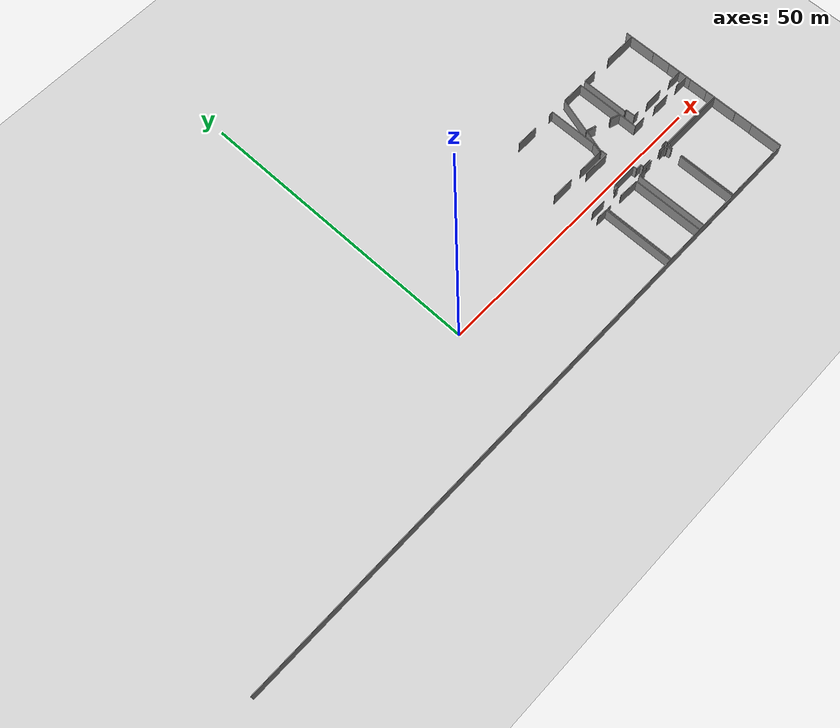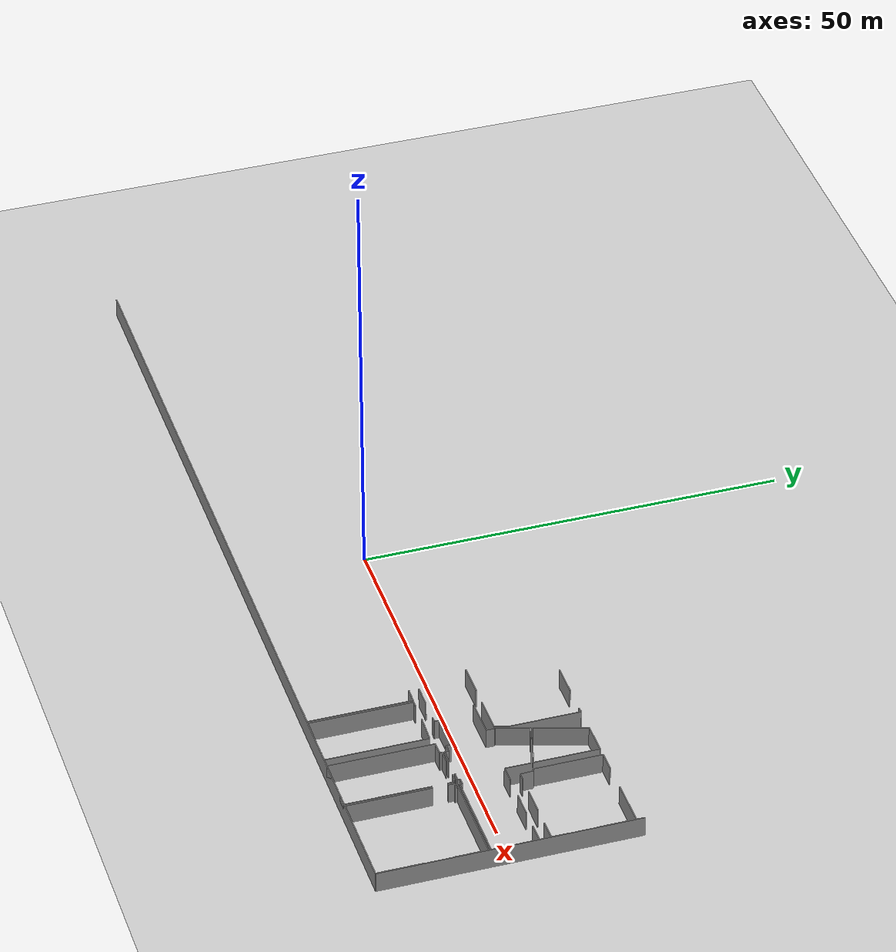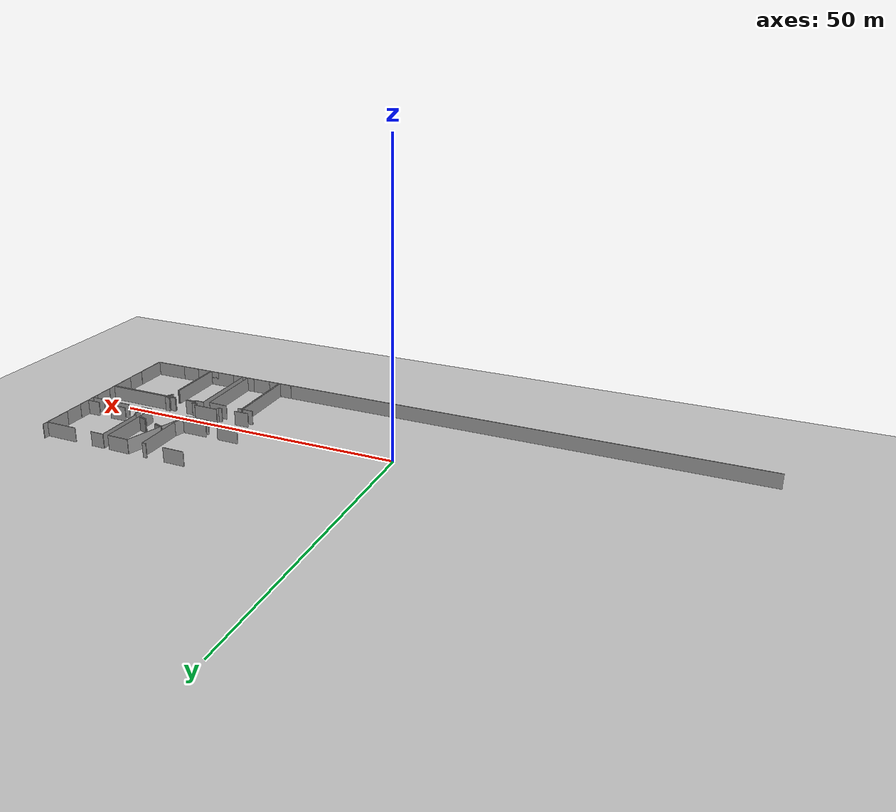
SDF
<sdf version="1.6">
 <world name="default">
  <model name="ground_plane">
   <static>1</static>
   <link name="link">
    <collision name="collision">
     <geometry><plane><normal>0 0 1</normal><size>100 100</size></plane></geometry>
     <surface><friction><ode><mu>100</mu><mu2>50</mu2></ode></friction></surface>
    </collision>
    <visual name="visual">
     <cast_shadows>0</cast_shadows>
     <geometry><plane><normal>0 0 1</normal><size>100 100</size></plane></geometry>
     <material>
      <script><uri>file://media/materials/scripts/gazebo.material</uri><name>Gazebo/Grey</name></script>
     </material>
    </visual>
   </link>
  </model>
  <model name="50056459">
   <static>1</static>
   <link name="Wall_155">
    <collision name="Wall_155_Collision">
     <geometry><box><size>11.2285397274 0.1 2.5</size></box></geometry>
     <pose>5.61426986372 0 1.25 0 0 0</pose>
    </collision>
    <visual name="Wall_155_Visual">
     <pose>5.61426986372 0 1.25 0 0 0</pose>
     <geometry><box><size>11.2285397274 0.1 2.5</size></box></geometry>
     <material>
      <script><uri>file://media/materials/scripts/gazebo.material</uri><name>Gazebo/Grey</name></script>
      <ambient>1 1 1 1</ambient>
     </material>
    </visual>
    <pose>110.200953696 -17.4158740376 0 0 0 3.14159265359</pose>
   </link>
   <link name="Wall_156">
    <collision name="Wall_156_Collision">
     <geometry><box><size>0.298643990277 0.1 2.5</size></box></geometry>
     <pose>0.149321995138 0 1.25 0 0 0</pose>
    </collision>
    <visual name="Wall_156_Visual">
     <pose>0.149321995138 0 1.25 0 0 0</pose>
     <geometry><box><size>0.298643990277 0.1 2.5</size></box></geometry>
     <material>
      <script><uri>file://media/materials/scripts/gazebo.material</uri><name>Gazebo/Grey</name></script>
      <ambient>1 1 1 1</ambient>
     </material>
    </visual>
    <pose>98.9724139683 -17.4158740376 0 0 0 1.57079632679</pose>
   </link>
   <link name="Wall_157">
    <collision name="Wall_157_Collision">
     <geometry><box><size>0.824108345262 0.1 2.5</size></box></geometry>
     <pose>0.412054172631 0 1.25 0 0 0</pose>
    </collision>
    <visual name="Wall_157_Visual">
     <pose>0.412054172631 0 1.25 0 0 0</pose>
     <geometry><box><size>0.824108345262 0.1 2.5</size></box></geometry>
     <material>
      <script><uri>file://media/materials/scripts/gazebo.material</uri><name>Gazebo/Grey</name></script>
      <ambient>1 1 1 1</ambient>
     </material>
    </visual>
    <pose>98.9724139683 -17.1172300473 0 0 0 3.14159265359</pose>
   </link>
   <link name="Wall_158">
    <collision name="Wall_158_Collision">
     <geometry><box><size>0.278316549078 0.1 2.5</size></box></geometry>
     <pose>0.139158274539 0 1.25 0 0 0</pose>
    </collision>
    <visual name="Wall_158_Visual">
     <pose>0.139158274539 0 1.25 0 0 0</pose>
     <geometry><box><size>0.278316549078 0.1 2.5</size></box></geometry>
     <material>
      <script><uri>file://media/materials/scripts/gazebo.material</uri><name>Gazebo/Grey</name></script>
      <ambient>1 1 1 1</ambient>
     </material>
    </visual>
    <pose>98.1483056231 -17.1172300473 0 0 0 -1.57079632679</pose>
   </link>
   <link name="Wall_159">
    <collision name="Wall_159_Collision">
     <geometry><box><size>1.04703261707 0.1 2.5</size></box></geometry>
     <pose>0.523516308537 0 1.25 0 0 0</pose>
    </collision>
    <visual name="Wall_159_Visual">
     <pose>0.523516308537 0 1.25 0 0 0</pose>
     <geometry><box><size>1.04703261707 0.1 2.5</size></box></geometry>
     <material>
      <script><uri>file://media/materials/scripts/gazebo.material</uri><name>Gazebo/Grey</name></script>
      <ambient>1 1 1 1</ambient>
     </material>
    </visual>
    <pose>98.1483056231 -17.3955465964 0 0 0 3.14159265359</pose>
   </link>
   <link name="Wall_160">
    <collision name="Wall_160_Collision">
     <geometry><box><size>1.61501520323 0.1 2.5</size></box></geometry>
     <pose>0.807507601616 0 1.25 0 0 0</pose>
    </collision>
    <visual name="Wall_160_Visual">
     <pose>0.807507601616 0 1.25 0 0 0</pose>
     <geometry><box><size>1.61501520323 0.1 2.5</size></box></geometry>
     <material>
      <script><uri>file://media/materials/scripts/gazebo.material</uri><name>Gazebo/Grey</name></script>
      <ambient>1 1 1 1</ambient>
     </material>
    </visual>
    <pose>94.8847349386 -17.3955465964 0 0 0 3.14159265359</pose>
   </link>
   <link name="Wall_161">
    <collision name="Wall_161_Collision">
     <geometry><box><size>0.467700542912 0.1 2.5</size></box></geometry>
     <pose>0.233850271456 0 1.25 0 0 0</pose>
    </collision>
    <visual name="Wall_161_Visual">
     <pose>0.233850271456 0 1.25 0 0 0</pose>
     <geometry><box><size>0.467700542912 0.1 2.5</size></box></geometry>
     <material>
      <script><uri>file://media/materials/scripts/gazebo.material</uri><name>Gazebo/Grey</name></script>
      <ambient>1 1 1 1</ambient>
     </material>
    </visual>
    <pose>93.2697197354 -17.3955465964 0 0 0 1.57079632679</pose>
   </link>
   <link name="Wall_162">
    <collision name="Wall_162_Collision">
     <geometry><box><size>0.980121456461 0.1 2.5</size></box></geometry>
     <pose>0.490060728231 0 1.25 0 0 0</pose>
    </collision>
    <visual name="Wall_162_Visual">
     <pose>0.490060728231 0 1.25 0 0 0</pose>
     <geometry><box><size>0.980121456461 0.1 2.5</size></box></geometry>
     <material>
      <script><uri>file://media/materials/scripts/gazebo.material</uri><name>Gazebo/Grey</name></script>
      <ambient>1 1 1 1</ambient>
     </material>
    </visual>
    <pose>93.2697197354 -16.9278460535 0 0 0 3.14159265359</pose>
   </link>
   <link name="Wall_163">
    <collision name="Wall_163_Collision">
     <geometry><box><size>0.612533561452 0.1 2.5</size></box></geometry>
     <pose>0.306266780726 0 1.25 0 0 0</pose>
    </collision>
    <visual name="Wall_163_Visual">
     <pose>0.306266780726 0 1.25 0 0 0</pose>
     <geometry><box><size>0.612533561452 0.1 2.5</size></box></geometry>
     <material>
      <script><uri>file://media/materials/scripts/gazebo.material</uri><name>Gazebo/Grey</name></script>
      <ambient>1 1 1 1</ambient>
     </material>
    </visual>
    <pose>92.2895982789 -16.9278460535 0 0 0 1.57079632679</pose>
   </link>
   <link name="Wall_164">
    <collision name="Wall_164_Collision">
     <geometry><box><size>4.31043390617 0.1 2.5</size></box></geometry>
     <pose>2.15521695309 0 1.25 0 0 0</pose>
    </collision>
    <visual name="Wall_164_Visual">
     <pose>2.15521695309 0 1.25 0 0 0</pose>
     <geometry><box><size>4.31043390617 0.1 2.5</size></box></geometry>
     <material>
      <script><uri>file://media/materials/scripts/gazebo.material</uri><name>Gazebo/Grey</name></script>
      <ambient>1 1 1 1</ambient>
     </material>
    </visual>
    <pose>92.2895982789 -16.3153124921 0 0 0 3.14159265359</pose>
   </link>
   <link name="Wall_165">
    <collision name="Wall_165_Collision">
     <geometry><box><size>0.601353468793 0.1 2.5</size></box></geometry>
     <pose>0.300676734397 0 1.25 0 0 0</pose>
    </collision>
    <visual name="Wall_165_Visual">
     <pose>0.300676734397 0 1.25 0 0 0</pose>
     <geometry><box><size>0.601353468793 0.1 2.5</size></box></geometry>
     <material>
      <script><uri>file://media/materials/scripts/gazebo.material</uri><name>Gazebo/Grey</name></script>
      <ambient>1 1 1 1</ambient>
     </material>
    </visual>
    <pose>87.9791643728 -16.3153124921 0 0 0 -1.57079632679</pose>
   </link>
   <link name="Wall_166">
    <collision name="Wall_166_Collision">
     <geometry><box><size>0.679444722065 0.1 2.5</size></box></geometry>
     <pose>0.339722361032 0 1.25 0 0 0</pose>
    </collision>
    <visual name="Wall_166_Visual">
     <pose>0.339722361032 0 1.25 0 0 0</pose>
     <geometry><box><size>0.679444722065 0.1 2.5</size></box></geometry>
     <material>
      <script><uri>file://media/materials/scripts/gazebo.material</uri><name>Gazebo/Grey</name></script>
      <ambient>1 1 1 1</ambient>
     </material>
    </visual>
    <pose>87.9791643728 -16.9166659609 0 0 0 3.14159265359</pose>
   </link>
   <link name="Wall_167">
    <collision name="Wall_167_Collision">
     <geometry><box><size>2.58514233444 0.1 2.5</size></box></geometry>
     <pose>1.29257116722 0 1.25 0 0 0</pose>
    </collision>
    <visual name="Wall_167_Visual">
     <pose>1.29257116722 0 1.25 0 0 0</pose>
     <geometry><box><size>2.58514233444 0.1 2.5</size></box></geometry>
     <material>
      <script><uri>file://media/materials/scripts/gazebo.material</uri><name>Gazebo/Grey</name></script>
      <ambient>1 1 1 1</ambient>
     </material>
    </visual>
    <pose>84.7674286634 -16.9166659609 0 0 0 3.14159265359</pose>
   </link>
   <link name="Wall_176">
    <collision name="Wall_176_Collision">
     <geometry><box><size>4.57147213023 0.1 2.5</size></box></geometry>
     <pose>2.28573606512 0 1.25 0 0 0</pose>
    </collision>
    <visual name="Wall_176_Visual">
     <pose>2.28573606512 0 1.25 0 0 0</pose>
     <geometry><box><size>4.57147213023 0.1 2.5</size></box></geometry>
     <material>
      <script><uri>file://media/materials/scripts/gazebo.material</uri><name>Gazebo/Grey</name></script>
      <ambient>1 1 1 1</ambient>
     </material>
    </visual>
    <pose>86.5613253492 -11.9491475179 0 0 0 0.0</pose>
   </link>
   <link name="Wall_177">
    <collision name="Wall_177_Collision">
     <geometry><box><size>0.982662386611 0.1 2.5</size></box></geometry>
     <pose>0.491331193305 0 1.25 0 0 0</pose>
    </collision>
    <visual name="Wall_177_Visual">
     <pose>0.491331193305 0 1.25 0 0 0</pose>
     <geometry><box><size>0.982662386611 0.1 2.5</size></box></geometry>
     <material>
      <script><uri>file://media/materials/scripts/gazebo.material</uri><name>Gazebo/Grey</name></script>
      <ambient>1 1 1 1</ambient>
     </material>
    </visual>
    <pose>91.1327974794 -11.9491475179 0 0 0 1.57079632679</pose>
   </link>
   <link name="Wall_178">
    <collision name="Wall_178_Collision">
     <geometry><box><size>0.10654967095 0.1 2.5</size></box></geometry>
     <pose>0.0532748354748 0 1.25 0 0 0</pose>
    </collision>
    <visual name="Wall_178_Visual">
     <pose>0.0532748354748 0 1.25 0 0 0</pose>
     <geometry><box><size>0.10654967095 0.1 2.5</size></box></geometry>
     <material>
      <script><uri>file://media/materials/scripts/gazebo.material</uri><name>Gazebo/Grey</name></script>
      <ambient>1 1 1 1</ambient>
     </material>
    </visual>
    <pose>91.1327974794 -10.9664851313 0 0 0 3.14159265359</pose>
   </link>
   <link name="Wall_179">
    <collision name="Wall_179_Collision">
     <geometry><box><size>3.97869166055 0.1 2.5</size></box></geometry>
     <pose>1.98934583028 0 1.25 0 0 0</pose>
    </collision>
    <visual name="Wall_179_Visual">
     <pose>1.98934583028 0 1.25 0 0 0</pose>
     <geometry><box><size>3.97869166055 0.1 2.5</size></box></geometry>
     <material>
      <script><uri>file://media/materials/scripts/gazebo.material</uri><name>Gazebo/Grey</name></script>
      <ambient>1 1 1 1</ambient>
     </material>
    </visual>
    <pose>91.0262478084 -10.9664851313 0 0 0 1.26727649594</pose>
   </link>
   <link name="Wall_180">
    <collision name="Wall_180_Collision">
     <geometry><box><size>1.64075109702 0.1 2.5</size></box></geometry>
     <pose>0.820375548509 0 1.25 0 0 0</pose>
    </collision>
    <visual name="Wall_180_Visual">
     <pose>0.820375548509 0 1.25 0 0 0</pose>
     <geometry><box><size>1.64075109702 0.1 2.5</size></box></geometry>
     <material>
      <script><uri>file://media/materials/scripts/gazebo.material</uri><name>Gazebo/Grey</name></script>
      <ambient>1 1 1 1</ambient>
     </material>
    </visual>
    <pose>92.2154031186 -7.1696579061 0 0 0 -0.285078447006</pose>
   </link>
   <link name="Wall_181">
    <collision name="Wall_181_Collision">
     <geometry><box><size>1.64778551166 0.1 2.5</size></box></geometry>
     <pose>0.82389275583 0 1.25 0 0 0</pose>
    </collision>
    <visual name="Wall_181_Visual">
     <pose>0.82389275583 0 1.25 0 0 0</pose>
     <geometry><box><size>1.64778551166 0.1 2.5</size></box></geometry>
     <material>
      <script><uri>file://media/materials/scripts/gazebo.material</uri><name>Gazebo/Grey</name></script>
      <ambient>1 1 1 1</ambient>
     </material>
    </visual>
    <pose>96.3337427054 -8.4291122837 0 0 0 -0.310599808801</pose>
   </link>
   <link name="Wall_182">
    <collision name="Wall_182_Collision">
     <geometry><box><size>3.05368985407 0.1 2.5</size></box></geometry>
     <pose>1.52684492703 0 1.25 0 0 0</pose>
    </collision>
    <visual name="Wall_182_Visual">
     <pose>1.52684492703 0 1.25 0 0 0</pose>
     <geometry><box><size>3.05368985407 0.1 2.5</size></box></geometry>
     <material>
      <script><uri>file://media/materials/scripts/gazebo.material</uri><name>Gazebo/Grey</name></script>
      <ambient>1 1 1 1</ambient>
     </material>
    </visual>
    <pose>97.9026823753 -8.9327246394 0 0 0 -1.57079632679</pose>
   </link>
   <link name="Wall_183">
    <collision name="Wall_183_Collision">
     <geometry><box><size>2.01648216691 0.1 2.5</size></box></geometry>
     <pose>1.00824108345 0 1.25 0 0 0</pose>
    </collision>
    <visual name="Wall_183_Visual">
     <pose>1.00824108345 0 1.25 0 0 0</pose>
     <geometry><box><size>2.01648216691 0.1 2.5</size></box></geometry>
     <material>
      <script><uri>file://media/materials/scripts/gazebo.material</uri><name>Gazebo/Grey</name></script>
      <ambient>1 1 1 1</ambient>
     </material>
    </visual>
    <pose>97.9026823753 -11.9864144935 0 0 0 0.0</pose>
   </link>
   <link name="Wall_184">
    <collision name="Wall_184_Collision">
     <geometry><box><size>2.99033599566 0.1 2.5</size></box></geometry>
     <pose>1.49516799783 0 1.25 0 0 0</pose>
    </collision>
    <visual name="Wall_184_Visual">
     <pose>1.49516799783 0 1.25 0 0 0</pose>
     <geometry><box><size>2.99033599566 0.1 2.5</size></box></geometry>
     <material>
      <script><uri>file://media/materials/scripts/gazebo.material</uri><name>Gazebo/Grey</name></script>
      <ambient>1 1 1 1</ambient>
     </material>
    </visual>
    <pose>102.578840828 -11.9864144935 0 0 0 0.0</pose>
   </link>
   <link name="Wall_185">
    <collision name="Wall_185_Collision">
     <geometry><box><size>2.31258522703 0.1 2.5</size></box></geometry>
     <pose>1.15629261352 0 1.25 0 0 0</pose>
    </collision>
    <visual name="Wall_185_Visual">
     <pose>1.15629261352 0 1.25 0 0 0</pose>
     <geometry><box><size>2.31258522703 0.1 2.5</size></box></geometry>
     <material>
      <script><uri>file://media/materials/scripts/gazebo.material</uri><name>Gazebo/Grey</name></script>
      <ambient>1 1 1 1</ambient>
     </material>
    </visual>
    <pose>107.852287261 -11.9864144935 0 0 0 0.0</pose>
   </link>
   <link name="Wall_186">
    <collision name="Wall_186_Collision">
     <geometry><box><size>0.894068622054 0.1 2.5</size></box></geometry>
     <pose>0.447034311027 0 1.25 0 0 0</pose>
    </collision>
    <visual name="Wall_186_Visual">
     <pose>0.447034311027 0 1.25 0 0 0</pose>
     <geometry><box><size>0.894068622054 0.1 2.5</size></box></geometry>
     <material>
      <script><uri>file://media/materials/scripts/gazebo.material</uri><name>Gazebo/Grey</name></script>
      <ambient>1 1 1 1</ambient>
     </material>
    </visual>
    <pose>110.164872488 -11.9864144935 0 0 0 -1.57079632679</pose>
   </link>
   <link name="Wall_187">
    <collision name="Wall_187_Collision">
     <geometry><box><size>1.37951942111 0.1 2.5</size></box></geometry>
     <pose>0.689759710554 0 1.25 0 0 0</pose>
    </collision>
    <visual name="Wall_187_Visual">
     <pose>0.689759710554 0 1.25 0 0 0</pose>
     <geometry><box><size>1.37951942111 0.1 2.5</size></box></geometry>
     <material>
      <script><uri>file://media/materials/scripts/gazebo.material</uri><name>Gazebo/Grey</name></script>
      <ambient>1 1 1 1</ambient>
     </material>
    </visual>
    <pose>110.164872488 -16.0368265476 0 0 0 -1.54463843255</pose>
   </link>
   <link name="Wall_236">
    <collision name="Wall_236_Collision">
     <geometry><box><size>4.4212184607 0.1 2.5</size></box></geometry>
     <pose>2.21060923035 0 1.25 0 0 0</pose>
    </collision>
    <visual name="Wall_236_Visual">
     <pose>2.21060923035 0 1.25 0 0 0</pose>
     <geometry><box><size>4.4212184607 0.1 2.5</size></box></geometry>
     <material>
      <script><uri>file://media/materials/scripts/gazebo.material</uri><name>Gazebo/Grey</name></script>
      <ambient>1 1 1 1</ambient>
     </material>
    </visual>
    <pose>90.8051868854 -10.9449719227 0 0 0 3.14159265359</pose>
   </link>
   <link name="Wall_237">
    <collision name="Wall_237_Collision">
     <geometry><box><size>3.81698527107 0.1 2.5</size></box></geometry>
     <pose>1.90849263554 0 1.25 0 0 0</pose>
    </collision>
    <visual name="Wall_237_Visual">
     <pose>1.90849263554 0 1.25 0 0 0</pose>
     <geometry><box><size>3.81698527107 0.1 2.5</size></box></geometry>
     <material>
      <script><uri>file://media/materials/scripts/gazebo.material</uri><name>Gazebo/Grey</name></script>
      <ambient>1 1 1 1</ambient>
     </material>
    </visual>
    <pose>84.241286727 -10.9449719227 0 0 0 3.14159265359</pose>
   </link>
   <link name="Wall_239">
    <collision name="Wall_239_Collision">
     <geometry><box><size>3.75786629626 0.1 2.5</size></box></geometry>
     <pose>1.87893314813 0 1.25 0 0 0</pose>
    </collision>
    <visual name="Wall_239_Visual">
     <pose>1.87893314813 0 1.25 0 0 0</pose>
     <geometry><box><size>3.75786629626 0.1 2.5</size></box></geometry>
     <material>
      <script><uri>file://media/materials/scripts/gazebo.material</uri><name>Gazebo/Grey</name></script>
      <ambient>1 1 1 1</ambient>
     </material>
    </visual>
    <pose>83.636375956 -1.0197599668 0 0 0 0.0</pose>
   </link>
   <link name="Wall_240">
    <collision name="Wall_240_Collision">
     <geometry><box><size>0.677920163975 0.1 2.5</size></box></geometry>
     <pose>0.338960081987 0 1.25 0 0 0</pose>
    </collision>
    <visual name="Wall_240_Visual">
     <pose>0.338960081987 0 1.25 0 0 0</pose>
     <geometry><box><size>0.677920163975 0.1 2.5</size></box></geometry>
     <material>
      <script><uri>file://media/materials/scripts/gazebo.material</uri><name>Gazebo/Grey</name></script>
      <ambient>1 1 1 1</ambient>
     </material>
    </visual>
    <pose>90.5903935901 -1.0197599668 0 0 0 0.0</pose>
   </link>
   <link name="Wall_241">
    <collision name="Wall_241_Collision">
     <geometry><box><size>8.25124717322 0.1 2.5</size></box></geometry>
     <pose>4.12562358661 0 1.25 0 0 0</pose>
    </collision>
    <visual name="Wall_241_Visual">
     <pose>4.12562358661 0 1.25 0 0 0</pose>
     <geometry><box><size>8.25124717322 0.1 2.5</size></box></geometry>
     <material>
      <script><uri>file://media/materials/scripts/gazebo.material</uri><name>Gazebo/Grey</name></script>
      <ambient>1 1 1 1</ambient>
     </material>
    </visual>
    <pose>91.2683137541 -1.0197599668 0 0 0 -1.57079632679</pose>
   </link>
   <link name="Wall_242">
    <collision name="Wall_242_Collision">
     <geometry><box><size>1.73684904071 0.1 2.5</size></box></geometry>
     <pose>0.868424520354 0 1.25 0 0 0</pose>
    </collision>
    <visual name="Wall_242_Visual">
     <pose>0.868424520354 0 1.25 0 0 0</pose>
     <geometry><box><size>1.73684904071 0.1 2.5</size></box></geometry>
     <material>
      <script><uri>file://media/materials/scripts/gazebo.material</uri><name>Gazebo/Grey</name></script>
      <ambient>1 1 1 1</ambient>
     </material>
    </visual>
    <pose>91.2683137541 -9.27100714001 0 0 0 -1.84070948325</pose>
   </link>
   <link name="Wall_243">
    <collision name="Wall_243_Collision">
     <geometry><box><size>7.74001202707 0.1 2.5</size></box></geometry>
     <pose>3.87000601353 0 1.25 0 0 0</pose>
    </collision>
    <visual name="Wall_243_Visual">
     <pose>3.87000601353 0 1.25 0 0 0</pose>
     <geometry><box><size>7.74001202707 0.1 2.5</size></box></geometry>
     <material>
      <script><uri>file://media/materials/scripts/gazebo.material</uri><name>Gazebo/Grey</name></script>
      <ambient>1 1 1 1</ambient>
     </material>
    </visual>
    <pose>97.9028517706 -8.75977199387 0 0 0 1.57079632679</pose>
   </link>
   <link name="Wall_244">
    <collision name="Wall_244_Collision">
     <geometry><box><size>3.77734676074 0.1 2.5</size></box></geometry>
     <pose>1.88867338037 0 1.25 0 0 0</pose>
    </collision>
    <visual name="Wall_244_Visual">
     <pose>1.88867338037 0 1.25 0 0 0</pose>
     <geometry><box><size>3.77734676074 0.1 2.5</size></box></geometry>
     <material>
      <script><uri>file://media/materials/scripts/gazebo.material</uri><name>Gazebo/Grey</name></script>
      <ambient>1 1 1 1</ambient>
     </material>
    </visual>
    <pose>97.9028517706 -1.0197599668 0 0 0 3.14159265359</pose>
   </link>
   <link name="Wall_245">
    <collision name="Wall_245_Collision">
     <geometry><box><size>6.22910630642 0.1 2.5</size></box></geometry>
     <pose>3.11455315321 0 1.25 0 0 0</pose>
    </collision>
    <visual name="Wall_245_Visual">
     <pose>3.11455315321 0 1.25 0 0 0</pose>
     <geometry><box><size>6.22910630642 0.1 2.5</size></box></geometry>
     <material>
      <script><uri>file://media/materials/scripts/gazebo.material</uri><name>Gazebo/Grey</name></script>
      <ambient>1 1 1 1</ambient>
     </material>
    </visual>
    <pose>94.1255050099 -1.0197599668 0 0 0 -1.87347192261</pose>
   </link>
   <link name="Wall_246">
    <collision name="Wall_246_Collision">
     <geometry><box><size>1.65699356654 0.1 2.5</size></box></geometry>
     <pose>0.828496783269 0 1.25 0 0 0</pose>
    </collision>
    <visual name="Wall_246_Visual">
     <pose>0.828496783269 0 1.25 0 0 0</pose>
     <geometry><box><size>1.65699356654 0.1 2.5</size></box></geometry>
     <material>
      <script><uri>file://media/materials/scripts/gazebo.material</uri><name>Gazebo/Grey</name></script>
      <ambient>1 1 1 1</ambient>
     </material>
    </visual>
    <pose>92.2687626517 -6.96570591274 0 0 0 -0.299280610082</pose>
   </link>
   <link name="Wall_247">
    <collision name="Wall_247_Collision">
     <geometry><box><size>1.59458804527 0.1 2.5</size></box></geometry>
     <pose>0.797294022633 0 1.25 0 0 0</pose>
    </collision>
    <visual name="Wall_247_Visual">
     <pose>0.797294022633 0 1.25 0 0 0</pose>
     <geometry><box><size>1.59458804527 0.1 2.5</size></box></geometry>
     <material>
      <script><uri>file://media/materials/scripts/gazebo.material</uri><name>Gazebo/Grey</name></script>
      <ambient>1 1 1 1</ambient>
     </material>
    </visual>
    <pose>96.3938780523 -8.24430196414 0 0 0 -0.329174746945</pose>
   </link>
   <link name="Wall_248">
    <collision name="Wall_248_Collision">
     <geometry><box><size>2.3273226219 0.1 2.5</size></box></geometry>
     <pose>1.16366131095 0 1.25 0 0 0</pose>
    </collision>
    <visual name="Wall_248_Visual">
     <pose>1.16366131095 0 1.25 0 0 0</pose>
     <geometry><box><size>2.3273226219 0.1 2.5</size></box></geometry>
     <material>
      <script><uri>file://media/materials/scripts/gazebo.material</uri><name>Gazebo/Grey</name></script>
      <ambient>1 1 1 1</ambient>
     </material>
    </visual>
    <pose>110.164872488 -10.6563222577 0 0 0 3.14159265359</pose>
   </link>
   <link name="Wall_249">
    <collision name="Wall_249_Collision">
     <geometry><box><size>3.14092845588 0.1 2.5</size></box></geometry>
     <pose>1.57046422794 0 1.25 0 0 0</pose>
    </collision>
    <visual name="Wall_249_Visual">
     <pose>1.57046422794 0 1.25 0 0 0</pose>
     <geometry><box><size>3.14092845588 0.1 2.5</size></box></geometry>
     <material>
      <script><uri>file://media/materials/scripts/gazebo.material</uri><name>Gazebo/Grey</name></script>
      <ambient>1 1 1 1</ambient>
     </material>
    </visual>
    <pose>105.521576732 -10.6563222577 0 0 0 3.14159265359</pose>
   </link>
   <link name="Wall_250">
    <collision name="Wall_250_Collision">
     <geometry><box><size>0.896609552203 0.1 2.5</size></box></geometry>
     <pose>0.448304776102 0 1.25 0 0 0</pose>
    </collision>
    <visual name="Wall_250_Visual">
     <pose>0.448304776102 0 1.25 0 0 0</pose>
     <geometry><box><size>0.896609552203 0.1 2.5</size></box></geometry>
     <material>
      <script><uri>file://media/materials/scripts/gazebo.material</uri><name>Gazebo/Grey</name></script>
      <ambient>1 1 1 1</ambient>
     </material>
    </visual>
    <pose>100.188164347 -10.6563222577 0 0 0 3.14159265359</pose>
   </link>
   <link name="Wall_251">
    <collision name="Wall_251_Collision">
     <geometry><box><size>1.55373520907 0.1 2.5</size></box></geometry>
     <pose>0.776867604535 0 1.25 0 0 0</pose>
    </collision>
    <visual name="Wall_251_Visual">
     <pose>0.776867604535 0 1.25 0 0 0</pose>
     <geometry><box><size>1.55373520907 0.1 2.5</size></box></geometry>
     <material>
      <script><uri>file://media/materials/scripts/gazebo.material</uri><name>Gazebo/Grey</name></script>
      <ambient>1 1 1 1</ambient>
     </material>
    </visual>
    <pose>99.2915547952 -10.6563222577 0 0 0 1.62031372382</pose>
   </link>
   <link name="Wall_252">
    <collision name="Wall_252_Collision">
     <geometry><box><size>0.311761073162 0.1 2.5</size></box></geometry>
     <pose>0.155880536581 0 1.25 0 0 0</pose>
    </collision>
    <visual name="Wall_252_Visual">
     <pose>0.155880536581 0 1.25 0 0 0</pose>
     <geometry><box><size>0.311761073162 0.1 2.5</size></box></geometry>
     <material>
      <script><uri>file://media/materials/scripts/gazebo.material</uri><name>Gazebo/Grey</name></script>
      <ambient>1 1 1 1</ambient>
     </material>
    </visual>
    <pose>99.2146493093 -9.10449151753 0 0 0 3.11985694675</pose>
   </link>
   <link name="Wall_253">
    <collision name="Wall_253_Collision">
     <geometry><box><size>8.08761127157 0.1 2.5</size></box></geometry>
     <pose>4.04380563578 0 1.25 0 0 0</pose>
    </collision>
    <visual name="Wall_253_Visual">
     <pose>4.04380563578 0 1.25 0 0 0</pose>
     <geometry><box><size>8.08761127157 0.1 2.5</size></box></geometry>
     <material>
      <script><uri>file://media/materials/scripts/gazebo.material</uri><name>Gazebo/Grey</name></script>
      <ambient>1 1 1 1</ambient>
     </material>
    </visual>
    <pose>98.9029618776 -9.0977157038 0 0 0 1.57079632679</pose>
   </link>
   <link name="Wall_254">
    <collision name="Wall_254_Collision">
     <geometry><box><size>2.37983517833 0.1 2.5</size></box></geometry>
     <pose>1.18991758917 0 1.25 0 0 0</pose>
    </collision>
    <visual name="Wall_254_Visual">
     <pose>1.18991758917 0 1.25 0 0 0</pose>
     <geometry><box><size>2.37983517833 0.1 2.5</size></box></geometry>
     <material>
      <script><uri>file://media/materials/scripts/gazebo.material</uri><name>Gazebo/Grey</name></script>
      <ambient>1 1 1 1</ambient>
     </material>
    </visual>
    <pose>98.9029618776 -1.01010443223 0 0 0 0.0</pose>
   </link>
   <link name="Wall_255">
    <collision name="Wall_255_Collision">
     <geometry><box><size>5.65899023436 0.1 2.5</size></box></geometry>
     <pose>2.82949511718 0 1.25 0 0 0</pose>
    </collision>
    <visual name="Wall_255_Visual">
     <pose>2.82949511718 0 1.25 0 0 0</pose>
     <geometry><box><size>5.65899023436 0.1 2.5</size></box></geometry>
     <material>
      <script><uri>file://media/materials/scripts/gazebo.material</uri><name>Gazebo/Grey</name></script>
      <ambient>1 1 1 1</ambient>
     </material>
    </visual>
    <pose>104.505882253 -1.01010443223 0 0 0 0.0</pose>
   </link>
   <link name="Wall_256">
    <collision name="Wall_256_Collision">
     <geometry><box><size>4.4759331566 0.1 2.5</size></box></geometry>
     <pose>2.2379665783 0 1.25 0 0 0</pose>
    </collision>
    <visual name="Wall_256_Visual">
     <pose>2.2379665783 0 1.25 0 0 0</pose>
     <geometry><box><size>4.4759331566 0.1 2.5</size></box></geometry>
     <material>
      <script><uri>file://media/materials/scripts/gazebo.material</uri><name>Gazebo/Grey</name></script>
      <ambient>1 1 1 1</ambient>
     </material>
    </visual>
    <pose>110.164872488 -1.01010443223 0 0 0 -1.57079632679</pose>
   </link>
   <link name="Wall_257">
    <collision name="Wall_257_Collision">
     <geometry><box><size>2.018006725 0.1 2.5</size></box></geometry>
     <pose>1.0090033625 0 1.25 0 0 0</pose>
    </collision>
    <visual name="Wall_257_Visual">
     <pose>1.0090033625 0 1.25 0 0 0</pose>
     <geometry><box><size>2.018006725 0.1 2.5</size></box></geometry>
     <material>
      <script><uri>file://media/materials/scripts/gazebo.material</uri><name>Gazebo/Grey</name></script>
      <ambient>1 1 1 1</ambient>
     </material>
    </visual>
    <pose>110.164872488 -8.63831553271 0 0 0 -1.57079632679</pose>
   </link>
   <link name="Wall_258">
    <collision name="Wall_258_Collision">
     <geometry><box><size>5.60800223602 0.1 2.5</size></box></geometry>
     <pose>2.80400111801 0 1.25 0 0 0</pose>
    </collision>
    <visual name="Wall_258_Visual">
     <pose>2.80400111801 0 1.25 0 0 0</pose>
     <geometry><box><size>5.60800223602 0.1 2.5</size></box></geometry>
     <material>
      <script><uri>file://media/materials/scripts/gazebo.material</uri><name>Gazebo/Grey</name></script>
      <ambient>1 1 1 1</ambient>
     </material>
    </visual>
    <pose>110.135397698 -30.3061820831 0 0 0 3.14159265359</pose>
   </link>
   <link name="Wall_259">
    <collision name="Wall_259_Collision">
     <geometry><box><size>2.67322791296 0.1 2.5</size></box></geometry>
     <pose>1.33661395648 0 1.25 0 0 0</pose>
    </collision>
    <visual name="Wall_259_Visual">
     <pose>1.33661395648 0 1.25 0 0 0</pose>
     <geometry><box><size>2.67322791296 0.1 2.5</size></box></geometry>
     <material>
      <script><uri>file://media/materials/scripts/gazebo.material</uri><name>Gazebo/Grey</name></script>
      <ambient>1 1 1 1</ambient>
     </material>
    </visual>
    <pose>101.350724589 -30.3061820831 0 0 0 3.14159265359</pose>
   </link>
   <link name="Wall_260">
    <collision name="Wall_260_Collision">
     <geometry><box><size>9.89861688702 0.1 2.5</size></box></geometry>
     <pose>4.94930844351 0 1.25 0 0 0</pose>
    </collision>
    <visual name="Wall_260_Visual">
     <pose>4.94930844351 0 1.25 0 0 0</pose>
     <geometry><box><size>9.89861688702 0.1 2.5</size></box></geometry>
     <material>
      <script><uri>file://media/materials/scripts/gazebo.material</uri><name>Gazebo/Grey</name></script>
      <ambient>1 1 1 1</ambient>
     </material>
    </visual>
    <pose>98.6774966756 -30.3061820831 0 0 0 1.57079632679</pose>
   </link>
   <link name="Wall_261">
    <collision name="Wall_261_Collision">
     <geometry><box><size>0.706886767683 0.1 2.5</size></box></geometry>
     <pose>0.353443383841 0 1.25 0 0 0</pose>
    </collision>
    <visual name="Wall_261_Visual">
     <pose>0.353443383841 0 1.25 0 0 0</pose>
     <geometry><box><size>0.706886767683 0.1 2.5</size></box></geometry>
     <material>
      <script><uri>file://media/materials/scripts/gazebo.material</uri><name>Gazebo/Grey</name></script>
      <ambient>1 1 1 1</ambient>
     </material>
    </visual>
    <pose>98.6774966756 -18.637214463 0 0 0 1.57079632679</pose>
   </link>
   <link name="Wall_262">
    <collision name="Wall_262_Collision">
     <geometry><box><size>0.261546410089 0.1 2.5</size></box></geometry>
     <pose>0.130773205045 0 1.25 0 0 0</pose>
    </collision>
    <visual name="Wall_262_Visual">
     <pose>0.130773205045 0 1.25 0 0 0</pose>
     <geometry><box><size>0.261546410089 0.1 2.5</size></box></geometry>
     <material>
      <script><uri>file://media/materials/scripts/gazebo.material</uri><name>Gazebo/Grey</name></script>
      <ambient>1 1 1 1</ambient>
     </material>
    </visual>
    <pose>98.6774966756 -17.9303276953 0 0 0 0.0</pose>
   </link>
   <link name="Wall_263">
    <collision name="Wall_263_Collision">
     <geometry><box><size>0.25189087552 0.1 2.5</size></box></geometry>
     <pose>0.12594543776 0 1.25 0 0 0</pose>
    </collision>
    <visual name="Wall_263_Visual">
     <pose>0.12594543776 0 1.25 0 0 0</pose>
     <geometry><box><size>0.25189087552 0.1 2.5</size></box></geometry>
     <material>
      <script><uri>file://media/materials/scripts/gazebo.material</uri><name>Gazebo/Grey</name></script>
      <ambient>1 1 1 1</ambient>
     </material>
    </visual>
    <pose>98.9390430857 -17.9303276953 0 0 0 1.57079632679</pose>
   </link>
   <link name="Wall_264">
    <collision name="Wall_264_Collision">
     <geometry><box><size>11.215496286 0.1 2.5</size></box></geometry>
     <pose>5.607748143 0 1.25 0 0 0</pose>
    </collision>
    <visual name="Wall_264_Visual">
     <pose>5.607748143 0 1.25 0 0 0</pose>
     <geometry><box><size>11.215496286 0.1 2.5</size></box></geometry>
     <material>
      <script><uri>file://media/materials/scripts/gazebo.material</uri><name>Gazebo/Grey</name></script>
      <ambient>1 1 1 1</ambient>
     </material>
    </visual>
    <pose>98.9390430857 -17.6784368198 0 0 0 0.0</pose>
   </link>
   <link name="Wall_265">
    <collision name="Wall_265_Collision">
     <geometry><box><size>4.00535289285 0.1 2.5</size></box></geometry>
     <pose>2.00267644642 0 1.25 0 0 0</pose>
    </collision>
    <visual name="Wall_265_Visual">
     <pose>2.00267644642 0 1.25 0 0 0</pose>
     <geometry><box><size>4.00535289285 0.1 2.5</size></box></geometry>
     <material>
      <script><uri>file://media/materials/scripts/gazebo.material</uri><name>Gazebo/Grey</name></script>
      <ambient>1 1 1 1</ambient>
     </material>
    </visual>
    <pose>110.154539372 -17.6784368198 0 0 0 -1.57079632679</pose>
   </link>
   <link name="Wall_266">
    <collision name="Wall_266_Collision">
     <geometry><box><size>5.4481266586 0.1 2.5</size></box></geometry>
     <pose>2.7240633293 0 1.25 0 0 0</pose>
    </collision>
    <visual name="Wall_266_Visual">
     <pose>2.7240633293 0 1.25 0 0 0</pose>
     <geometry><box><size>5.4481266586 0.1 2.5</size></box></geometry>
     <material>
      <script><uri>file://media/materials/scripts/gazebo.material</uri><name>Gazebo/Grey</name></script>
      <ambient>1 1 1 1</ambient>
     </material>
    </visual>
    <pose>110.154539372 -24.8580890511 0 0 0 -1.57430977543</pose>
   </link>
   <link name="Wall_267">
    <collision name="Wall_267_Collision">
     <geometry><box><size>1.50372246267 0.1 2.5</size></box></geometry>
     <pose>0.751861231335 0 1.25 0 0 0</pose>
    </collision>
    <visual name="Wall_267_Visual">
     <pose>0.751861231335 0 1.25 0 0 0</pose>
     <geometry><box><size>1.50372246267 0.1 2.5</size></box></geometry>
     <material>
      <script><uri>file://media/materials/scripts/gazebo.material</uri><name>Gazebo/Grey</name></script>
      <ambient>1 1 1 1</ambient>
     </material>
    </visual>
    <pose>98.4156114748 -30.3156682223 0 0 0 3.14159265359</pose>
   </link>
   <link name="Wall_268">
    <collision name="Wall_268_Collision">
     <geometry><box><size>2.03816477085 0.1 2.5</size></box></geometry>
     <pose>1.01908238543 0 1.25 0 0 0</pose>
    </collision>
    <visual name="Wall_268_Visual">
     <pose>1.01908238543 0 1.25 0 0 0</pose>
     <geometry><box><size>2.03816477085 0.1 2.5</size></box></geometry>
     <material>
      <script><uri>file://media/materials/scripts/gazebo.material</uri><name>Gazebo/Grey</name></script>
      <ambient>1 1 1 1</ambient>
     </material>
    </visual>
    <pose>93.7152294883 -30.3156682223 0 0 0 3.14159265359</pose>
   </link>
   <link name="Wall_269">
    <collision name="Wall_269_Collision">
     <geometry><box><size>12.3563739233 0.1 2.5</size></box></geometry>
     <pose>6.17818696164 0 1.25 0 0 0</pose>
    </collision>
    <visual name="Wall_269_Visual">
     <pose>6.17818696164 0 1.25 0 0 0</pose>
     <geometry><box><size>12.3563739233 0.1 2.5</size></box></geometry>
     <material>
      <script><uri>file://media/materials/scripts/gazebo.material</uri><name>Gazebo/Grey</name></script>
      <ambient>1 1 1 1</ambient>
     </material>
    </visual>
    <pose>91.6770647175 -30.3156682223 0 0 0 1.57079632679</pose>
   </link>
   <link name="Wall_270">
    <collision name="Wall_270_Collision">
     <geometry><box><size>1.58638739021 0.1 2.5</size></box></geometry>
     <pose>0.793193695105 0 1.25 0 0 0</pose>
    </collision>
    <visual name="Wall_270_Visual">
     <pose>0.793193695105 0 1.25 0 0 0</pose>
     <geometry><box><size>1.58638739021 0.1 2.5</size></box></geometry>
     <material>
      <script><uri>file://media/materials/scripts/gazebo.material</uri><name>Gazebo/Grey</name></script>
      <ambient>1 1 1 1</ambient>
     </material>
    </visual>
    <pose>91.6770647175 -17.959294299 0 0 0 0.0</pose>
   </link>
   <link name="Wall_271">
    <collision name="Wall_271_Collision">
     <geometry><box><size>0.290513013797 0.1 2.5</size></box></geometry>
     <pose>0.145256506899 0 1.25 0 0 0</pose>
    </collision>
    <visual name="Wall_271_Visual">
     <pose>0.145256506899 0 1.25 0 0 0</pose>
     <geometry><box><size>0.290513013797 0.1 2.5</size></box></geometry>
     <material>
      <script><uri>file://media/materials/scripts/gazebo.material</uri><name>Gazebo/Grey</name></script>
      <ambient>1 1 1 1</ambient>
     </material>
    </visual>
    <pose>93.2634521077 -17.959294299 0 0 0 1.57079632679</pose>
   </link>
   <link name="Wall_272">
    <collision name="Wall_272_Collision">
     <geometry><box><size>1.5980756689 0.1 2.5</size></box></geometry>
     <pose>0.79903783445 0 1.25 0 0 0</pose>
    </collision>
    <visual name="Wall_272_Visual">
     <pose>0.79903783445 0 1.25 0 0 0</pose>
     <geometry><box><size>1.5980756689 0.1 2.5</size></box></geometry>
     <material>
      <script><uri>file://media/materials/scripts/gazebo.material</uri><name>Gazebo/Grey</name></script>
      <ambient>1 1 1 1</ambient>
     </material>
    </visual>
    <pose>93.2634521077 -17.6687812852 0 0 0 0.0</pose>
   </link>
   <link name="Wall_273">
    <collision name="Wall_273_Collision">
     <geometry><box><size>1.01179838566 0.1 2.5</size></box></geometry>
     <pose>0.505899192831 0 1.25 0 0 0</pose>
    </collision>
    <visual name="Wall_273_Visual">
     <pose>0.505899192831 0 1.25 0 0 0</pose>
     <geometry><box><size>1.01179838566 0.1 2.5</size></box></geometry>
     <material>
      <script><uri>file://media/materials/scripts/gazebo.material</uri><name>Gazebo/Grey</name></script>
      <ambient>1 1 1 1</ambient>
     </material>
    </visual>
    <pose>97.1397257489 -17.6687812852 0 0 0 0.0</pose>
   </link>
   <link name="Wall_274">
    <collision name="Wall_274_Collision">
     <geometry><box><size>0.260868828716 0.1 2.5</size></box></geometry>
     <pose>0.130434414358 0 1.25 0 0 0</pose>
    </collision>
    <visual name="Wall_274_Visual">
     <pose>0.130434414358 0 1.25 0 0 0</pose>
     <geometry><box><size>0.260868828716 0.1 2.5</size></box></geometry>
     <material>
      <script><uri>file://media/materials/scripts/gazebo.material</uri><name>Gazebo/Grey</name></script>
      <ambient>1 1 1 1</ambient>
     </material>
    </visual>
    <pose>98.1515241346 -17.6687812852 0 0 0 -1.57079632679</pose>
   </link>
   <link name="Wall_275">
    <collision name="Wall_275_Collision">
     <geometry><box><size>0.268999805195 0.1 2.5</size></box></geometry>
     <pose>0.134499902598 0 1.25 0 0 0</pose>
    </collision>
    <visual name="Wall_275_Visual">
     <pose>0.134499902598 0 1.25 0 0 0</pose>
     <geometry><box><size>0.268999805195 0.1 2.5</size></box></geometry>
     <material>
      <script><uri>file://media/materials/scripts/gazebo.material</uri><name>Gazebo/Grey</name></script>
      <ambient>1 1 1 1</ambient>
     </material>
    </visual>
    <pose>98.1515241346 -17.9296501139 0 0 0 0.0</pose>
   </link>
   <link name="Wall_276">
    <collision name="Wall_276_Collision">
     <geometry><box><size>0.691641186784 0.1 2.5</size></box></geometry>
     <pose>0.345820593392 0 1.25 0 0 0</pose>
    </collision>
    <visual name="Wall_276_Visual">
     <pose>0.345820593392 0 1.25 0 0 0</pose>
     <geometry><box><size>0.691641186784 0.1 2.5</size></box></geometry>
     <material>
      <script><uri>file://media/materials/scripts/gazebo.material</uri><name>Gazebo/Grey</name></script>
      <ambient>1 1 1 1</ambient>
     </material>
    </visual>
    <pose>98.4205239398 -17.9296501139 0 0 0 -1.57079632679</pose>
   </link>
   <link name="Wall_277">
    <collision name="Wall_277_Collision">
     <geometry><box><size>9.92538256695 0.1 2.5</size></box></geometry>
     <pose>4.96269128348 0 1.25 0 0 0</pose>
    </collision>
    <visual name="Wall_277_Visual">
     <pose>4.96269128348 0 1.25 0 0 0</pose>
     <geometry><box><size>9.92538256695 0.1 2.5</size></box></geometry>
     <material>
      <script><uri>file://media/materials/scripts/gazebo.material</uri><name>Gazebo/Grey</name></script>
      <ambient>1 1 1 1</ambient>
     </material>
    </visual>
    <pose>98.4205239398 -20.390286871 0 0 0 -1.57129126642</pose>
   </link>
   <link name="Wall_278">
    <collision name="Wall_278_Collision">
     <geometry><box><size>1.30891781785 0.1 2.5</size></box></geometry>
     <pose>0.654458908925 0 1.25 0 0 0</pose>
    </collision>
    <visual name="Wall_278_Visual">
     <pose>0.654458908925 0 1.25 0 0 0</pose>
     <geometry><box><size>1.30891781785 0.1 2.5</size></box></geometry>
     <material>
      <script><uri>file://media/materials/scripts/gazebo.material</uri><name>Gazebo/Grey</name></script>
      <ambient>1 1 1 1</ambient>
     </material>
    </visual>
    <pose>90.6357915421 -30.3026247808 0 0 0 3.14159265359</pose>
   </link>
   <link name="Wall_279">
    <collision name="Wall_279_Collision">
     <geometry><box><size>1.93805212295 0.1 2.5</size></box></geometry>
     <pose>0.969026061474 0 1.25 0 0 0</pose>
    </collision>
    <visual name="Wall_279_Visual">
     <pose>0.969026061474 0 1.25 0 0 0</pose>
     <geometry><box><size>1.93805212295 0.1 2.5</size></box></geometry>
     <material>
      <script><uri>file://media/materials/scripts/gazebo.material</uri><name>Gazebo/Grey</name></script>
      <ambient>1 1 1 1</ambient>
     </material>
    </visual>
    <pose>86.0746525278 -30.3026247808 0 0 0 3.14159265359</pose>
   </link>
   <link name="Wall_280">
    <collision name="Wall_280_Collision">
     <geometry><box><size>12.1680063015 0.1 2.5</size></box></geometry>
     <pose>6.08400315075 0 1.25 0 0 0</pose>
    </collision>
    <visual name="Wall_280_Visual">
     <pose>6.08400315075 0 1.25 0 0 0</pose>
     <geometry><box><size>12.1680063015 0.1 2.5</size></box></geometry>
     <material>
      <script><uri>file://media/materials/scripts/gazebo.material</uri><name>Gazebo/Grey</name></script>
      <ambient>1 1 1 1</ambient>
     </material>
    </visual>
    <pose>84.1366004049 -30.3026247808 0 0 0 1.57079632679</pose>
   </link>
   <link name="Wall_281">
    <collision name="Wall_281_Collision">
     <geometry><box><size>0.706717372339 0.1 2.5</size></box></geometry>
     <pose>0.35335868617 0 1.25 0 0 0</pose>
    </collision>
    <visual name="Wall_281_Visual">
     <pose>0.35335868617 0 1.25 0 0 0</pose>
     <geometry><box><size>0.706717372339 0.1 2.5</size></box></geometry>
     <material>
      <script><uri>file://media/materials/scripts/gazebo.material</uri><name>Gazebo/Grey</name></script>
      <ambient>1 1 1 1</ambient>
     </material>
    </visual>
    <pose>84.1366004049 -18.1346184793 0 0 0 0.0</pose>
   </link>
   <link name="Wall_282">
    <collision name="Wall_282_Collision">
     <geometry><box><size>3.46124589347 0.1 2.5</size></box></geometry>
     <pose>1.73062294673 0 1.25 0 0 0</pose>
    </collision>
    <visual name="Wall_282_Visual">
     <pose>1.73062294673 0 1.25 0 0 0</pose>
     <geometry><box><size>3.46124589347 0.1 2.5</size></box></geometry>
     <material>
      <script><uri>file://media/materials/scripts/gazebo.material</uri><name>Gazebo/Grey</name></script>
      <ambient>1 1 1 1</ambient>
     </material>
    </visual>
    <pose>87.1616624459 -18.1346184793 0 0 0 -0.0407298136721</pose>
   </link>
   <link name="Wall_283">
    <collision name="Wall_283_Collision">
     <geometry><box><size>12.0270796935 0.1 2.5</size></box></geometry>
     <pose>6.01353984673 0 1.25 0 0 0</pose>
    </collision>
    <visual name="Wall_283_Visual">
     <pose>6.01353984673 0 1.25 0 0 0</pose>
     <geometry><box><size>12.0270796935 0.1 2.5</size></box></geometry>
     <material>
      <script><uri>file://media/materials/scripts/gazebo.material</uri><name>Gazebo/Grey</name></script>
      <ambient>1 1 1 1</ambient>
     </material>
    </visual>
    <pose>90.6200377752 -18.275555405 0 0 0 -1.56948646839</pose>
   </link>
   <link name="Wall_284">
    <collision name="Wall_284_Collision">
     <geometry><box><size>2.17740774306 0.1 2.5</size></box></geometry>
     <pose>1.08870387153 0 1.25 0 0 0</pose>
    </collision>
    <visual name="Wall_284_Visual">
     <pose>1.08870387153 0 1.25 0 0 0</pose>
     <geometry><box><size>2.17740774306 0.1 2.5</size></box></geometry>
     <material>
      <script><uri>file://media/materials/scripts/gazebo.material</uri><name>Gazebo/Grey</name></script>
      <ambient>1 1 1 1</ambient>
     </material>
    </visual>
    <pose>83.8442240423 -30.2900895254 0 0 0 3.14159265359</pose>
   </link>
   <link name="Wall_288">
    <collision name="Wall_288_Collision">
     <geometry><box><size>1.8386149183 0.1 2.5</size></box></geometry>
     <pose>0.919307459148 0 1.25 0 0 0</pose>
    </collision>
    <visual name="Wall_288_Visual">
     <pose>0.919307459148 0 1.25 0 0 0</pose>
     <geometry><box><size>1.8386149183 0.1 2.5</size></box></geometry>
     <material>
      <script><uri>file://media/materials/scripts/gazebo.material</uri><name>Gazebo/Grey</name></script>
      <ambient>1 1 1 1</ambient>
     </material>
    </visual>
    <pose>82.0203443807 -18.0528005285 0 0 0 -0.030316084711</pose>
   </link>
   <link name="Wall_289">
    <collision name="Wall_289_Collision">
     <geometry><box><size>12.1815658485 0.1 2.5</size></box></geometry>
     <pose>6.09078292424 0 1.25 0 0 0</pose>
    </collision>
    <visual name="Wall_289_Visual">
     <pose>6.09078292424 0 1.25 0 0 0</pose>
     <geometry><box><size>12.1815658485 0.1 2.5</size></box></geometry>
     <material>
      <script><uri>file://media/materials/scripts/gazebo.material</uri><name>Gazebo/Grey</name></script>
      <ambient>1 1 1 1</ambient>
     </material>
    </visual>
    <pose>83.8581144604 -18.1085315965 0 0 0 -1.57193660887</pose>
   </link>
   <link name="Wall_304">
    <collision name="Wall_304_Collision">
     <geometry><box><size>30.3156682223 0.1 2.5</size></box></geometry>
     <pose>15.1578341111 0 1.25 0 0 0</pose>
    </collision>
    <visual name="Wall_304_Visual">
     <pose>15.1578341111 0 1.25 0 0 0</pose>
     <geometry><box><size>30.3156682223 0.1 2.5</size></box></geometry>
     <material>
      <script><uri>file://media/materials/scripts/gazebo.material</uri><name>Gazebo/Grey</name></script>
      <ambient>1 1 1 1</ambient>
     </material>
    </visual>
    <pose>110.200953696 -30.3156682223 0 0 0 1.57079632679</pose>
   </link>
   <link name="Wall_305">
    <collision name="Wall_305_Collision">
     <geometry><box><size>110.200953696 0.1 2.5</size></box></geometry>
     <pose>55.1004768479 0 1.25 0 0 0</pose>
    </collision>
    <visual name="Wall_305_Visual">
     <pose>55.1004768479 0 1.25 0 0 0</pose>
     <geometry><box><size>110.200953696 0.1 2.5</size></box></geometry>
     <material>
      <script><uri>file://media/materials/scripts/gazebo.material</uri><name>Gazebo/Grey</name></script>
      <ambient>1 1 1 1</ambient>
     </material>
    </visual>
    <pose>110.200953696 -30.3156682223 0 0 0 3.14159265359</pose>
   </link>
   <pose>-55.1 15.1656682223 0 0 0 0</pose>
  </model>
 </world>
</sdf>
